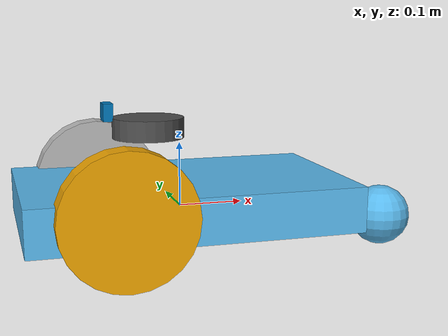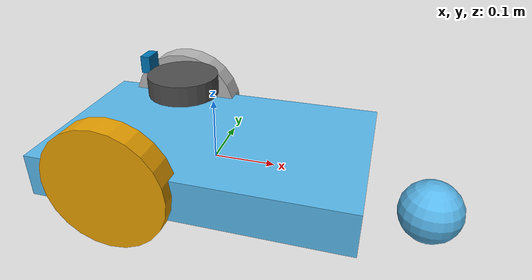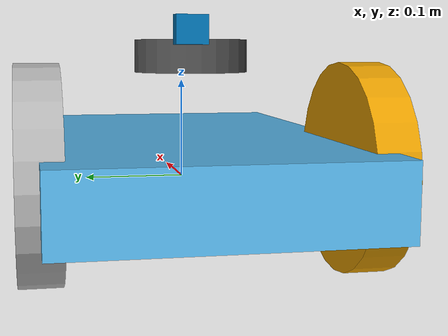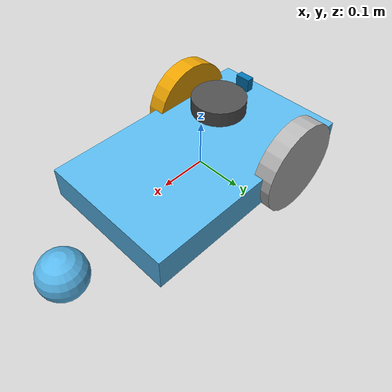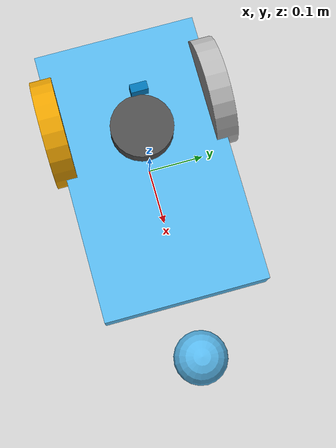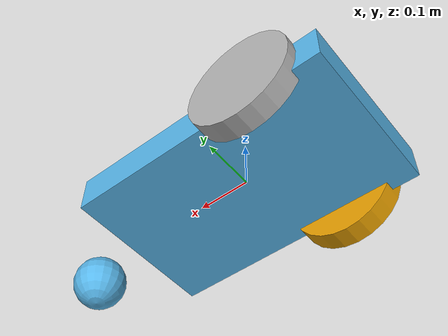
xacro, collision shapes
<?xml version="1.0" ?>
<robot name="robocop"
    xmlns:xacro="https://www.ros.org/wiki/xacro">
    <xacro:include filename="$(find robocop_description)/urdf/gazebo.xacro" />
    <xacro:include filename="$(find robocop_description)/urdf/macro.xacro" />

    <link name="base_footprint" />

    <joint name="base_joint" type="fixed">
        <parent link="base_footprint" />
        <child link="base_link" />
        <origin xyz="0 0 0.01" rpy="0 0 0" />
    </joint>

    <!-- chasis -->
    <link name="base_link">
        <inertial>
            <origin xyz="0.0 0.0 0.1" rpy="0.0 0.0 0.0" />
            <mass value="5" />
            <inertia ixx="0.0395416666667" ixy="0.0" ixz="0.0" iyy="0.106208333333" iyz="0.0" izz="0.106208333333" />
        </inertial>

        <visual>
            <origin xyz="0.25 -0.15 0" rpy="0 0 ${pi/2}" />
            <geometry>
                <mesh filename="package://robocop_description/media/meshes/chassis.dae" scale="1.98 3 2.5" />
            </geometry>
        </visual>

        <collision>
            <geometry>
                <box size="0.5 0.3 0.07" />
            </geometry>
        </collision>

        <!-- caster front -->
        <collision>
            <origin xyz="0.35 0 -0.05" rpy="0 0 0" />
            <geometry>
                <sphere radius="0.05" />
            </geometry>
            <surface>
                <friction>
                    <ode>
                        <mu>0</mu>
                        <mu2>0</mu2>
                        <slip1>1.0</slip1>
                        <slip2>1.0</slip2>
                    </ode>
                </friction>
            </surface>
        </collision>
    </link>

    <!-- imu link -->
    <link name="imu_link" />

    <joint name="imu_joint" type="fixed">
        <parent link="base_link" />
        <child link="imu_link" />
        <origin xyz="0.0 0 0.068" rpy="0 0 0" />
    </joint>

    <!-- base scan -->
    <link name="base_scan">
        <visual>
            <origin xyz="-0.04 0.01 0.0" rpy="0 0 0" />
            <geometry>
                <mesh filename="package://turtlebot3_description/meshes/sensors/lds.stl" scale="0.001 0.001 0.001" />
            </geometry>
            <material name="dark" />
        </visual>

        <collision>
            <origin xyz="0.015 0 -0.0065" rpy="0 0 0" />
            <geometry>
                <cylinder length="0.0315" radius="0.055" />
            </geometry>
        </collision>

        <inertial>
            <mass value="0.114" />
            <origin xyz="0 0 0" />
            <inertia ixx="0.001" ixy="0.0" ixz="0.0" iyy="0.001" iyz="0.0" izz="0.001" />
        </inertial>
    </link>

    <joint name="scan_joint" type="fixed">
        <parent link="base_link" />
        <child link="base_scan" />
        <origin xyz="-0.064 0 0.122" rpy="0 0 0" />
    </joint>

    <!-- camera link -->
    <link name="camera_link">
        <visual>
            <origin xyz="-0.11 0.0 0.04" rpy="0 0 0" />
            <geometry>
                <box size="0.015 0.030 0.027" />
            </geometry>
        </visual>

        <collision>
            <origin xyz="-0.11 0.0 0.04" rpy="0 0 0" />
            <geometry>
                <box size="0.015 0.030 0.027" />
            </geometry>
        </collision>
    </link>

    <joint name="camera_joint" type="fixed">
        <origin xyz="0.0 0.011 0.1" rpy="0 0 0" />
        <parent link="base_link" />
        <child link="camera_link" />
    </joint>

    <link name="camera_rgb_frame" />

    <joint name="camera_rgb_joint" type="fixed">
        <origin xyz="0.1 0.0 0.04" rpy="0 0 0" />
        <parent link="camera_link" />
        <child link="camera_rgb_frame" />
    </joint>

    <link name="camera_rgb_optical_frame" />

    <joint name="camera_rgb_optical_joint" type="fixed">
        <origin xyz="0 0 0" rpy="-1.57 0 -1.57" />
        <parent link="camera_rgb_frame" />
        <child link="camera_rgb_optical_frame" />
    </joint>

    <!-- wheels -->
    <xacro:wheel name="left" reflect="1" />
    <xacro:wheel name="right" reflect="-1" />
</robot>

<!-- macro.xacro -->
<robot xmlns:xacro="https://www.ros.org/wiki/xacro">

    <xacro:macro name="wheel" params="name reflect">
        <link name="wheel_${name}_link">
            <visual>
                <origin xyz="0.9845 ${-0.03*reflect} -0.104" rpy="0.0 0.0 ${pi/2}" />
                <geometry>
                    <mesh filename="package://robocop_description/media/meshes/wheel.dae" scale="0.25 0.4 0.4" />
                </geometry>
            </visual>
            <collision>
                <origin xyz="0 0 0" rpy="0 ${pi/2} ${pi/2}" />
                <geometry>
                    <cylinder length="0.04" radius="0.1" />
                </geometry>
            </collision>

            <inertial>
                <mass value="0.2" />
                <origin xyz="0.0 0.0 0.0" rpy="0 ${pi/2} ${pi/2}" />
                <inertia ixx="0.00052666666" ixy="0" ixz="0" iyy="0.00052666666" iyz="0" izz="0.001" />
            </inertial>
        </link>

        <joint name="wheel_${name}_joint" type="continuous">
            <parent link="base_link" />
            <child link="wheel_${name}_link" />
            <origin xyz="-0.11 ${0.15*reflect} 0.01" rpy="0 0 0" />
            <axis xyz="0 1 0" rpy="0 0 0" />
            <limit effort="10000" velocity="1000" />
            <joint_properties damping="1.0" friction="1.0" />
        </joint>

        <gazebo reference="wheel_${name}_joint">
            <mu1 value="200.0" />
            <mu2 value="100.0" />
            <kp value="10000000.0" />
            <kd value="1.0" />
            <material>Gazebo/DarkGrey</material>
        </gazebo>

    </xacro:macro>

</robot>
